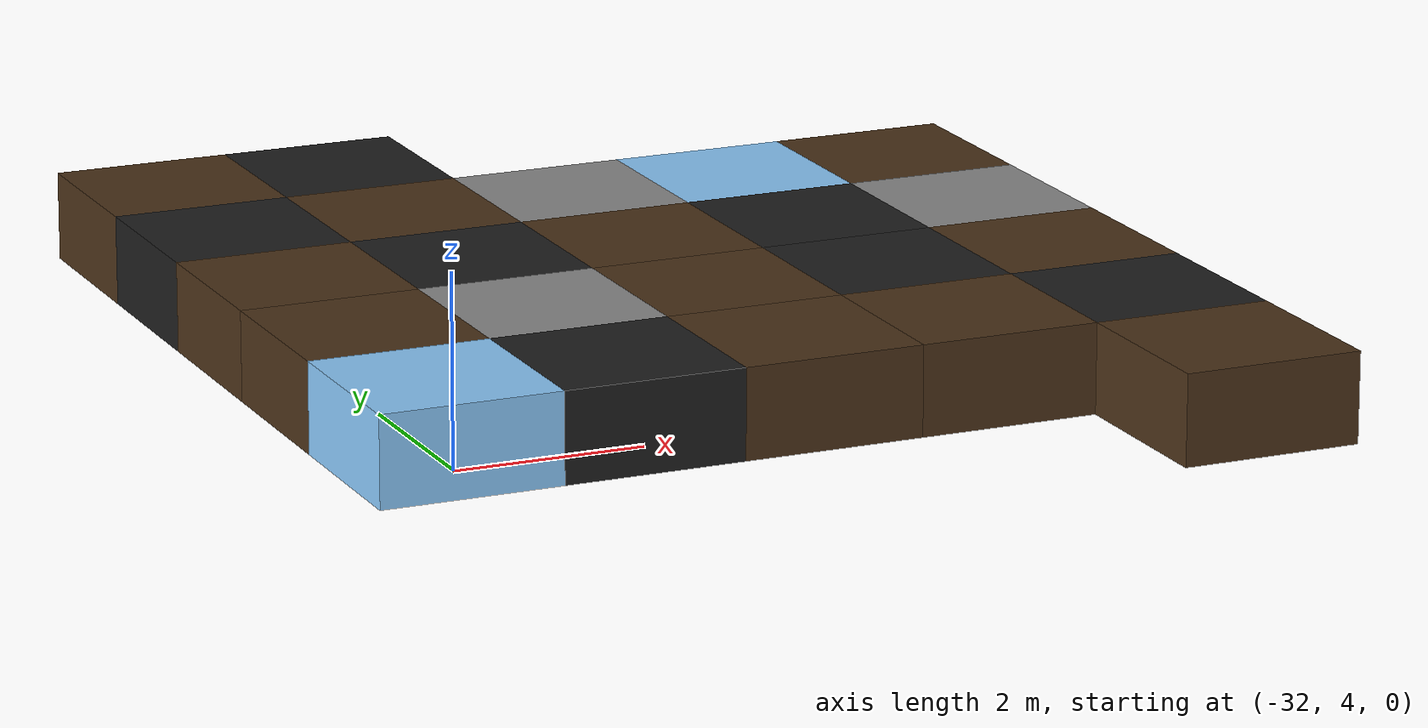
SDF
<sdf version="1.5">
 <world name="squares_example">
  <model name="tile_4_18">
   <static>true</static>
   <pose>-23.000 5.000 -0.500 0 0 0</pose>
   <link name="link">
    <collision name="col">
     <geometry><box><size>2.0 2.0 1.0</size></box></geometry>
     <surface>
      <friction>
       <ode><mu>0.6</mu><mu2>0.4</mu2><fdir1>1 0 0</fdir1><slip1>0.08</slip1><slip2>0.08</slip2></ode>
       <torsional>
        <coefficient>0.03</coefficient>
        <use_patch_radius>false</use_patch_radius>
        <surface_radius>0.12</surface_radius>
        <ode><slip>0.0</slip></ode>
       </torsional>
      </friction>
      <bounce><restitution_coefficient>0.0</restitution_coefficient><threshold>0.1</threshold></bounce>
      <contact>
       <ode><kp>1000000.0</kp><kd>10000.0</kd><max_vel>0.01</max_vel><min_depth>0.0</min_depth></ode>
      </contact>
     </surface>
    </collision>
    <visual name="visual">
     <geometry><box><size>2.0 2.0 1.0</size></box></geometry>
     <material>
      <diffuse>0.30 0.20 0.10 1</diffuse>
      <ambient>0 0 0 0</ambient>
      <specular>0 0 0 1</specular>
      <emissive>0 0 0 1</emissive>
     </material>
    </visual>
   </link>
  </model>
  <model name="tile_0_19">
   <static>true</static>
   <pose>-31.000 7.000 -0.500 0 0 0</pose>
   <link name="link">
    <collision name="col">
     <geometry><box><size>2.0 2.0 1.0</size></box></geometry>
     <surface>
      <friction>
       <ode><mu>0.03</mu><mu2>0.02</mu2><fdir1>1 0 0</fdir1><slip1>0.03</slip1><slip2>0.03</slip2></ode>
       <torsional>
        <coefficient>0.005</coefficient>
        <use_patch_radius>false</use_patch_radius>
        <surface_radius>0.12</surface_radius>
        <ode><slip>0.01</slip></ode>
       </torsional>
      </friction>
      <bounce><restitution_coefficient>0.0</restitution_coefficient><threshold>0.1</threshold></bounce>
      <contact>
       <ode><kp>10000000.0</kp><kd>1000.0</kd><max_vel>0.01</max_vel><min_depth>0.0</min_depth></ode>
      </contact>
     </surface>
    </collision>
    <visual name="visual">
     <geometry><box><size>2.0 2.0 1.0</size></box></geometry>
     <material>
      <diffuse>0.55 0.80 1.00 1</diffuse>
      <ambient>0 0 0 0</ambient>
      <specular>0 0 0 1</specular>
      <emissive>0 0 0 1</emissive>
     </material>
    </visual>
   </link>
  </model>
  <model name="tile_1_19">
   <static>true</static>
   <pose>-29.000 7.000 -0.500 0 0 0</pose>
   <link name="link">
    <collision name="col">
     <geometry><box><size>2.0 2.0 1.0</size></box></geometry>
     <surface>
      <friction>
       <ode><mu>0.4</mu><mu2>0.15</mu2><fdir1>1 0 0</fdir1><slip1>0.0</slip1><slip2>0.0</slip2></ode>
       <torsional>
        <coefficient>0.03</coefficient>
        <use_patch_radius>false</use_patch_radius>
        <surface_radius>0.12</surface_radius>
        <ode><slip>0.0</slip></ode>
       </torsional>
      </friction>
      <bounce><restitution_coefficient>0.0</restitution_coefficient><threshold>0.1</threshold></bounce>
      <contact>
       <ode><kp>1000000000.0</kp><kd>1000000.0</kd><max_vel>0.01</max_vel><min_depth>0.0</min_depth></ode>
      </contact>
     </surface>
    </collision>
    <visual name="visual">
     <geometry><box><size>2.0 2.0 1.0</size></box></geometry>
     <material>
      <diffuse>0.12 0.12 0.12 1</diffuse>
      <ambient>0 0 0 0</ambient>
      <specular>0 0 0 1</specular>
      <emissive>0 0 0 1</emissive>
     </material>
    </visual>
   </link>
  </model>
  <model name="tile_2_19">
   <static>true</static>
   <pose>-27.000 7.000 -0.500 0 0 0</pose>
   <link name="link">
    <collision name="col">
     <geometry><box><size>2.0 2.0 1.0</size></box></geometry>
     <surface>
      <friction>
       <ode><mu>0.6</mu><mu2>0.4</mu2><fdir1>1 0 0</fdir1><slip1>0.08</slip1><slip2>0.08</slip2></ode>
       <torsional>
        <coefficient>0.03</coefficient>
        <use_patch_radius>false</use_patch_radius>
        <surface_radius>0.12</surface_radius>
        <ode><slip>0.0</slip></ode>
       </torsional>
      </friction>
      <bounce><restitution_coefficient>0.0</restitution_coefficient><threshold>0.1</threshold></bounce>
      <contact>
       <ode><kp>1000000.0</kp><kd>10000.0</kd><max_vel>0.01</max_vel><min_depth>0.0</min_depth></ode>
      </contact>
     </surface>
    </collision>
    <visual name="visual">
     <geometry><box><size>2.0 2.0 1.0</size></box></geometry>
     <material>
      <diffuse>0.30 0.20 0.10 1</diffuse>
      <ambient>0 0 0 0</ambient>
      <specular>0 0 0 1</specular>
      <emissive>0 0 0 1</emissive>
     </material>
    </visual>
   </link>
  </model>
  <model name="tile_3_19">
   <static>true</static>
   <pose>-25.000 7.000 -0.500 0 0 0</pose>
   <link name="link">
    <collision name="col">
     <geometry><box><size>2.0 2.0 1.0</size></box></geometry>
     <surface>
      <friction>
       <ode><mu>0.6</mu><mu2>0.4</mu2><fdir1>1 0 0</fdir1><slip1>0.08</slip1><slip2>0.08</slip2></ode>
       <torsional>
        <coefficient>0.03</coefficient>
        <use_patch_radius>false</use_patch_radius>
        <surface_radius>0.12</surface_radius>
        <ode><slip>0.0</slip></ode>
       </torsional>
      </friction>
      <bounce><restitution_coefficient>0.0</restitution_coefficient><threshold>0.1</threshold></bounce>
      <contact>
       <ode><kp>1000000.0</kp><kd>10000.0</kd><max_vel>0.01</max_vel><min_depth>0.0</min_depth></ode>
      </contact>
     </surface>
    </collision>
    <visual name="visual">
     <geometry><box><size>2.0 2.0 1.0</size></box></geometry>
     <material>
      <diffuse>0.30 0.20 0.10 1</diffuse>
      <ambient>0 0 0 0</ambient>
      <specular>0 0 0 1</specular>
      <emissive>0 0 0 1</emissive>
     </material>
    </visual>
   </link>
  </model>
  <model name="tile_4_19">
   <static>true</static>
   <pose>-23.000 7.000 -0.500 0 0 0</pose>
   <link name="link">
    <collision name="col">
     <geometry><box><size>2.0 2.0 1.0</size></box></geometry>
     <surface>
      <friction>
       <ode><mu>0.4</mu><mu2>0.15</mu2><fdir1>1 0 0</fdir1><slip1>0.0</slip1><slip2>0.0</slip2></ode>
       <torsional>
        <coefficient>0.03</coefficient>
        <use_patch_radius>false</use_patch_radius>
        <surface_radius>0.12</surface_radius>
        <ode><slip>0.0</slip></ode>
       </torsional>
      </friction>
      <bounce><restitution_coefficient>0.0</restitution_coefficient><threshold>0.1</threshold></bounce>
      <contact>
       <ode><kp>1000000000.0</kp><kd>1000000.0</kd><max_vel>0.01</max_vel><min_depth>0.0</min_depth></ode>
      </contact>
     </surface>
    </collision>
    <visual name="visual">
     <geometry><box><size>2.0 2.0 1.0</size></box></geometry>
     <material>
      <diffuse>0.12 0.12 0.12 1</diffuse>
      <ambient>0 0 0 0</ambient>
      <specular>0 0 0 1</specular>
      <emissive>0 0 0 1</emissive>
     </material>
    </visual>
   </link>
  </model>
  <model name="tile_0_20">
   <static>true</static>
   <pose>-31.000 9.000 -0.500 0 0 0</pose>
   <link name="link">
    <collision name="col">
     <geometry><box><size>2.0 2.0 1.0</size></box></geometry>
     <surface>
      <friction>
       <ode><mu>0.6</mu><mu2>0.4</mu2><fdir1>1 0 0</fdir1><slip1>0.08</slip1><slip2>0.08</slip2></ode>
       <torsional>
        <coefficient>0.03</coefficient>
        <use_patch_radius>false</use_patch_radius>
        <surface_radius>0.12</surface_radius>
        <ode><slip>0.0</slip></ode>
       </torsional>
      </friction>
      <bounce><restitution_coefficient>0.0</restitution_coefficient><threshold>0.1</threshold></bounce>
      <contact>
       <ode><kp>1000000.0</kp><kd>10000.0</kd><max_vel>0.01</max_vel><min_depth>0.0</min_depth></ode>
      </contact>
     </surface>
    </collision>
    <visual name="visual">
     <geometry><box><size>2.0 2.0 1.0</size></box></geometry>
     <material>
      <diffuse>0.30 0.20 0.10 1</diffuse>
      <ambient>0 0 0 0</ambient>
      <specular>0 0 0 1</specular>
      <emissive>0 0 0 1</emissive>
     </material>
    </visual>
   </link>
  </model>
  <model name="tile_1_20">
   <static>true</static>
   <pose>-29.000 9.000 -0.500 0 0 0</pose>
   <link name="link">
    <collision name="col">
     <geometry><box><size>2.0 2.0 1.0</size></box></geometry>
     <surface>
      <friction>
       <ode><mu>0.8</mu><mu2>0.3</mu2><fdir1>1 0 0</fdir1><slip1>0.0</slip1><slip2>0.0</slip2></ode>
       <torsional>
        <coefficient>0.03</coefficient>
        <use_patch_radius>false</use_patch_radius>
        <surface_radius>0.12</surface_radius>
        <ode><slip>0.0</slip></ode>
       </torsional>
      </friction>
      <bounce><restitution_coefficient>0.0</restitution_coefficient><threshold>0.1</threshold></bounce>
      <contact>
       <ode><kp>10000000000.0</kp><kd>10000000.0</kd><max_vel>0.01</max_vel><min_depth>0.0</min_depth></ode>
      </contact>
     </surface>
    </collision>
    <visual name="visual">
     <geometry><box><size>2.0 2.0 1.0</size></box></geometry>
     <material>
      <diffuse>0.55 0.55 0.55 1</diffuse>
      <ambient>0 0 0 0</ambient>
      <specular>0 0 0 1</specular>
      <emissive>0 0 0 1</emissive>
     </material>
    </visual>
   </link>
  </model>
  <model name="tile_2_20">
   <static>true</static>
   <pose>-27.000 9.000 -0.500 0 0 0</pose>
   <link name="link">
    <collision name="col">
     <geometry><box><size>2.0 2.0 1.0</size></box></geometry>
     <surface>
      <friction>
       <ode><mu>0.6</mu><mu2>0.4</mu2><fdir1>1 0 0</fdir1><slip1>0.08</slip1><slip2>0.08</slip2></ode>
       <torsional>
        <coefficient>0.03</coefficient>
        <use_patch_radius>false</use_patch_radius>
        <surface_radius>0.12</surface_radius>
        <ode><slip>0.0</slip></ode>
       </torsional>
      </friction>
      <bounce><restitution_coefficient>0.0</restitution_coefficient><threshold>0.1</threshold></bounce>
      <contact>
       <ode><kp>1000000.0</kp><kd>10000.0</kd><max_vel>0.01</max_vel><min_depth>0.0</min_depth></ode>
      </contact>
     </surface>
    </collision>
    <visual name="visual">
     <geometry><box><size>2.0 2.0 1.0</size></box></geometry>
     <material>
      <diffuse>0.30 0.20 0.10 1</diffuse>
      <ambient>0 0 0 0</ambient>
      <specular>0 0 0 1</specular>
      <emissive>0 0 0 1</emissive>
     </material>
    </visual>
   </link>
  </model>
  <model name="tile_3_20">
   <static>true</static>
   <pose>-25.000 9.000 -0.500 0 0 0</pose>
   <link name="link">
    <collision name="col">
     <geometry><box><size>2.0 2.0 1.0</size></box></geometry>
     <surface>
      <friction>
       <ode><mu>0.4</mu><mu2>0.15</mu2><fdir1>1 0 0</fdir1><slip1>0.0</slip1><slip2>0.0</slip2></ode>
       <torsional>
        <coefficient>0.03</coefficient>
        <use_patch_radius>false</use_patch_radius>
        <surface_radius>0.12</surface_radius>
        <ode><slip>0.0</slip></ode>
       </torsional>
      </friction>
      <bounce><restitution_coefficient>0.0</restitution_coefficient><threshold>0.1</threshold></bounce>
      <contact>
       <ode><kp>1000000000.0</kp><kd>1000000.0</kd><max_vel>0.01</max_vel><min_depth>0.0</min_depth></ode>
      </contact>
     </surface>
    </collision>
    <visual name="visual">
     <geometry><box><size>2.0 2.0 1.0</size></box></geometry>
     <material>
      <diffuse>0.12 0.12 0.12 1</diffuse>
      <ambient>0 0 0 0</ambient>
      <specular>0 0 0 1</specular>
      <emissive>0 0 0 1</emissive>
     </material>
    </visual>
   </link>
  </model>
  <model name="tile_4_20">
   <static>true</static>
   <pose>-23.000 9.000 -0.500 0 0 0</pose>
   <link name="link">
    <collision name="col">
     <geometry><box><size>2.0 2.0 1.0</size></box></geometry>
     <surface>
      <friction>
       <ode><mu>0.6</mu><mu2>0.4</mu2><fdir1>1 0 0</fdir1><slip1>0.08</slip1><slip2>0.08</slip2></ode>
       <torsional>
        <coefficient>0.03</coefficient>
        <use_patch_radius>false</use_patch_radius>
        <surface_radius>0.12</surface_radius>
        <ode><slip>0.0</slip></ode>
       </torsional>
      </friction>
      <bounce><restitution_coefficient>0.0</restitution_coefficient><threshold>0.1</threshold></bounce>
      <contact>
       <ode><kp>1000000.0</kp><kd>10000.0</kd><max_vel>0.01</max_vel><min_depth>0.0</min_depth></ode>
      </contact>
     </surface>
    </collision>
    <visual name="visual">
     <geometry><box><size>2.0 2.0 1.0</size></box></geometry>
     <material>
      <diffuse>0.30 0.20 0.10 1</diffuse>
      <ambient>0 0 0 0</ambient>
      <specular>0 0 0 1</specular>
      <emissive>0 0 0 1</emissive>
     </material>
    </visual>
   </link>
  </model>
  <model name="tile_0_21">
   <static>true</static>
   <pose>-31.000 11.000 -0.500 0 0 0</pose>
   <link name="link">
    <collision name="col">
     <geometry><box><size>2.0 2.0 1.0</size></box></geometry>
     <surface>
      <friction>
       <ode><mu>0.6</mu><mu2>0.4</mu2><fdir1>1 0 0</fdir1><slip1>0.08</slip1><slip2>0.08</slip2></ode>
       <torsional>
        <coefficient>0.03</coefficient>
        <use_patch_radius>false</use_patch_radius>
        <surface_radius>0.12</surface_radius>
        <ode><slip>0.0</slip></ode>
       </torsional>
      </friction>
      <bounce><restitution_coefficient>0.0</restitution_coefficient><threshold>0.1</threshold></bounce>
      <contact>
       <ode><kp>1000000.0</kp><kd>10000.0</kd><max_vel>0.01</max_vel><min_depth>0.0</min_depth></ode>
      </contact>
     </surface>
    </collision>
    <visual name="visual">
     <geometry><box><size>2.0 2.0 1.0</size></box></geometry>
     <material>
      <diffuse>0.30 0.20 0.10 1</diffuse>
      <ambient>0 0 0 0</ambient>
      <specular>0 0 0 1</specular>
      <emissive>0 0 0 1</emissive>
     </material>
    </visual>
   </link>
  </model>
  <model name="tile_1_21">
   <static>true</static>
   <pose>-29.000 11.000 -0.500 0 0 0</pose>
   <link name="link">
    <collision name="col">
     <geometry><box><size>2.0 2.0 1.0</size></box></geometry>
     <surface>
      <friction>
       <ode><mu>0.4</mu><mu2>0.15</mu2><fdir1>1 0 0</fdir1><slip1>0.0</slip1><slip2>0.0</slip2></ode>
       <torsional>
        <coefficient>0.03</coefficient>
        <use_patch_radius>false</use_patch_radius>
        <surface_radius>0.12</surface_radius>
        <ode><slip>0.0</slip></ode>
       </torsional>
      </friction>
      <bounce><restitution_coefficient>0.0</restitution_coefficient><threshold>0.1</threshold></bounce>
      <contact>
       <ode><kp>1000000000.0</kp><kd>1000000.0</kd><max_vel>0.01</max_vel><min_depth>0.0</min_depth></ode>
      </contact>
     </surface>
    </collision>
    <visual name="visual">
     <geometry><box><size>2.0 2.0 1.0</size></box></geometry>
     <material>
      <diffuse>0.12 0.12 0.12 1</diffuse>
      <ambient>0 0 0 0</ambient>
      <specular>0 0 0 1</specular>
      <emissive>0 0 0 1</emissive>
     </material>
    </visual>
   </link>
  </model>
  <model name="tile_2_21">
   <static>true</static>
   <pose>-27.000 11.000 -0.500 0 0 0</pose>
   <link name="link">
    <collision name="col">
     <geometry><box><size>2.0 2.0 1.0</size></box></geometry>
     <surface>
      <friction>
       <ode><mu>0.6</mu><mu2>0.4</mu2><fdir1>1 0 0</fdir1><slip1>0.08</slip1><slip2>0.08</slip2></ode>
       <torsional>
        <coefficient>0.03</coefficient>
        <use_patch_radius>false</use_patch_radius>
        <surface_radius>0.12</surface_radius>
        <ode><slip>0.0</slip></ode>
       </torsional>
      </friction>
      <bounce><restitution_coefficient>0.0</restitution_coefficient><threshold>0.1</threshold></bounce>
      <contact>
       <ode><kp>1000000.0</kp><kd>10000.0</kd><max_vel>0.01</max_vel><min_depth>0.0</min_depth></ode>
      </contact>
     </surface>
    </collision>
    <visual name="visual">
     <geometry><box><size>2.0 2.0 1.0</size></box></geometry>
     <material>
      <diffuse>0.30 0.20 0.10 1</diffuse>
      <ambient>0 0 0 0</ambient>
      <specular>0 0 0 1</specular>
      <emissive>0 0 0 1</emissive>
     </material>
    </visual>
   </link>
  </model>
  <model name="tile_3_21">
   <static>true</static>
   <pose>-25.000 11.000 -0.500 0 0 0</pose>
   <link name="link">
    <collision name="col">
     <geometry><box><size>2.0 2.0 1.0</size></box></geometry>
     <surface>
      <friction>
       <ode><mu>0.4</mu><mu2>0.15</mu2><fdir1>1 0 0</fdir1><slip1>0.0</slip1><slip2>0.0</slip2></ode>
       <torsional>
        <coefficient>0.03</coefficient>
        <use_patch_radius>false</use_patch_radius>
        <surface_radius>0.12</surface_radius>
        <ode><slip>0.0</slip></ode>
       </torsional>
      </friction>
      <bounce><restitution_coefficient>0.0</restitution_coefficient><threshold>0.1</threshold></bounce>
      <contact>
       <ode><kp>1000000000.0</kp><kd>1000000.0</kd><max_vel>0.01</max_vel><min_depth>0.0</min_depth></ode>
      </contact>
     </surface>
    </collision>
    <visual name="visual">
     <geometry><box><size>2.0 2.0 1.0</size></box></geometry>
     <material>
      <diffuse>0.12 0.12 0.12 1</diffuse>
      <ambient>0 0 0 0</ambient>
      <specular>0 0 0 1</specular>
      <emissive>0 0 0 1</emissive>
     </material>
    </visual>
   </link>
  </model>
  <model name="tile_4_21">
   <static>true</static>
   <pose>-23.000 11.000 -0.500 0 0 0</pose>
   <link name="link">
    <collision name="col">
     <geometry><box><size>2.0 2.0 1.0</size></box></geometry>
     <surface>
      <friction>
       <ode><mu>0.8</mu><mu2>0.3</mu2><fdir1>1 0 0</fdir1><slip1>0.0</slip1><slip2>0.0</slip2></ode>
       <torsional>
        <coefficient>0.03</coefficient>
        <use_patch_radius>false</use_patch_radius>
        <surface_radius>0.12</surface_radius>
        <ode><slip>0.0</slip></ode>
       </torsional>
      </friction>
      <bounce><restitution_coefficient>0.0</restitution_coefficient><threshold>0.1</threshold></bounce>
      <contact>
       <ode><kp>10000000000.0</kp><kd>10000000.0</kd><max_vel>0.01</max_vel><min_depth>0.0</min_depth></ode>
      </contact>
     </surface>
    </collision>
    <visual name="visual">
     <geometry><box><size>2.0 2.0 1.0</size></box></geometry>
     <material>
      <diffuse>0.55 0.55 0.55 1</diffuse>
      <ambient>0 0 0 0</ambient>
      <specular>0 0 0 1</specular>
      <emissive>0 0 0 1</emissive>
     </material>
    </visual>
   </link>
  </model>
  <model name="tile_0_22">
   <static>true</static>
   <pose>-31.000 13.000 -0.500 0 0 0</pose>
   <link name="link">
    <collision name="col">
     <geometry><box><size>2.0 2.0 1.0</size></box></geometry>
     <surface>
      <friction>
       <ode><mu>0.4</mu><mu2>0.15</mu2><fdir1>1 0 0</fdir1><slip1>0.0</slip1><slip2>0.0</slip2></ode>
       <torsional>
        <coefficient>0.03</coefficient>
        <use_patch_radius>false</use_patch_radius>
        <surface_radius>0.12</surface_radius>
        <ode><slip>0.0</slip></ode>
       </torsional>
      </friction>
      <bounce><restitution_coefficient>0.0</restitution_coefficient><threshold>0.1</threshold></bounce>
      <contact>
       <ode><kp>1000000000.0</kp><kd>1000000.0</kd><max_vel>0.01</max_vel><min_depth>0.0</min_depth></ode>
      </contact>
     </surface>
    </collision>
    <visual name="visual">
     <geometry><box><size>2.0 2.0 1.0</size></box></geometry>
     <material>
      <diffuse>0.12 0.12 0.12 1</diffuse>
      <ambient>0 0 0 0</ambient>
      <specular>0 0 0 1</specular>
      <emissive>0 0 0 1</emissive>
     </material>
    </visual>
   </link>
  </model>
  <model name="tile_1_22">
   <static>true</static>
   <pose>-29.000 13.000 -0.500 0 0 0</pose>
   <link name="link">
    <collision name="col">
     <geometry><box><size>2.0 2.0 1.0</size></box></geometry>
     <surface>
      <friction>
       <ode><mu>0.6</mu><mu2>0.4</mu2><fdir1>1 0 0</fdir1><slip1>0.08</slip1><slip2>0.08</slip2></ode>
       <torsional>
        <coefficient>0.03</coefficient>
        <use_patch_radius>false</use_patch_radius>
        <surface_radius>0.12</surface_radius>
        <ode><slip>0.0</slip></ode>
       </torsional>
      </friction>
      <bounce><restitution_coefficient>0.0</restitution_coefficient><threshold>0.1</threshold></bounce>
      <contact>
       <ode><kp>1000000.0</kp><kd>10000.0</kd><max_vel>0.01</max_vel><min_depth>0.0</min_depth></ode>
      </contact>
     </surface>
    </collision>
    <visual name="visual">
     <geometry><box><size>2.0 2.0 1.0</size></box></geometry>
     <material>
      <diffuse>0.30 0.20 0.10 1</diffuse>
      <ambient>0 0 0 0</ambient>
      <specular>0 0 0 1</specular>
      <emissive>0 0 0 1</emissive>
     </material>
    </visual>
   </link>
  </model>
  <model name="tile_2_22">
   <static>true</static>
   <pose>-27.000 13.000 -0.500 0 0 0</pose>
   <link name="link">
    <collision name="col">
     <geometry><box><size>2.0 2.0 1.0</size></box></geometry>
     <surface>
      <friction>
       <ode><mu>0.8</mu><mu2>0.3</mu2><fdir1>1 0 0</fdir1><slip1>0.0</slip1><slip2>0.0</slip2></ode>
       <torsional>
        <coefficient>0.03</coefficient>
        <use_patch_radius>false</use_patch_radius>
        <surface_radius>0.12</surface_radius>
        <ode><slip>0.0</slip></ode>
       </torsional>
      </friction>
      <bounce><restitution_coefficient>0.0</restitution_coefficient><threshold>0.1</threshold></bounce>
      <contact>
       <ode><kp>10000000000.0</kp><kd>10000000.0</kd><max_vel>0.01</max_vel><min_depth>0.0</min_depth></ode>
      </contact>
     </surface>
    </collision>
    <visual name="visual">
     <geometry><box><size>2.0 2.0 1.0</size></box></geometry>
     <material>
      <diffuse>0.55 0.55 0.55 1</diffuse>
      <ambient>0 0 0 0</ambient>
      <specular>0 0 0 1</specular>
      <emissive>0 0 0 1</emissive>
     </material>
    </visual>
   </link>
  </model>
  <model name="tile_3_22">
   <static>true</static>
   <pose>-25.000 13.000 -0.500 0 0 0</pose>
   <link name="link">
    <collision name="col">
     <geometry><box><size>2.0 2.0 1.0</size></box></geometry>
     <surface>
      <friction>
       <ode><mu>0.03</mu><mu2>0.02</mu2><fdir1>1 0 0</fdir1><slip1>0.03</slip1><slip2>0.03</slip2></ode>
       <torsional>
        <coefficient>0.005</coefficient>
        <use_patch_radius>false</use_patch_radius>
        <surface_radius>0.12</surface_radius>
        <ode><slip>0.01</slip></ode>
       </torsional>
      </friction>
      <bounce><restitution_coefficient>0.0</restitution_coefficient><threshold>0.1</threshold></bounce>
      <contact>
       <ode><kp>10000000.0</kp><kd>1000.0</kd><max_vel>0.01</max_vel><min_depth>0.0</min_depth></ode>
      </contact>
     </surface>
    </collision>
    <visual name="visual">
     <geometry><box><size>2.0 2.0 1.0</size></box></geometry>
     <material>
      <diffuse>0.55 0.80 1.00 1</diffuse>
      <ambient>0 0 0 0</ambient>
      <specular>0 0 0 1</specular>
      <emissive>0 0 0 1</emissive>
     </material>
    </visual>
   </link>
  </model>
  <model name="tile_4_22">
   <static>true</static>
   <pose>-23.000 13.000 -0.500 0 0 0</pose>
   <link name="link">
    <collision name="col">
     <geometry><box><size>2.0 2.0 1.0</size></box></geometry>
     <surface>
      <friction>
       <ode><mu>0.6</mu><mu2>0.4</mu2><fdir1>1 0 0</fdir1><slip1>0.08</slip1><slip2>0.08</slip2></ode>
       <torsional>
        <coefficient>0.03</coefficient>
        <use_patch_radius>false</use_patch_radius>
        <surface_radius>0.12</surface_radius>
        <ode><slip>0.0</slip></ode>
       </torsional>
      </friction>
      <bounce><restitution_coefficient>0.0</restitution_coefficient><threshold>0.1</threshold></bounce>
      <contact>
       <ode><kp>1000000.0</kp><kd>10000.0</kd><max_vel>0.01</max_vel><min_depth>0.0</min_depth></ode>
      </contact>
     </surface>
    </collision>
    <visual name="visual">
     <geometry><box><size>2.0 2.0 1.0</size></box></geometry>
     <material>
      <diffuse>0.30 0.20 0.10 1</diffuse>
      <ambient>0 0 0 0</ambient>
      <specular>0 0 0 1</specular>
      <emissive>0 0 0 1</emissive>
     </material>
    </visual>
   </link>
  </model>
  <model name="tile_0_23">
   <static>true</static>
   <pose>-31.000 15.000 -0.500 0 0 0</pose>
   <link name="link">
    <collision name="col">
     <geometry><box><size>2.0 2.0 1.0</size></box></geometry>
     <surface>
      <friction>
       <ode><mu>0.6</mu><mu2>0.4</mu2><fdir1>1 0 0</fdir1><slip1>0.08</slip1><slip2>0.08</slip2></ode>
       <torsional>
        <coefficient>0.03</coefficient>
        <use_patch_radius>false</use_patch_radius>
        <surface_radius>0.12</surface_radius>
        <ode><slip>0.0</slip></ode>
       </torsional>
      </friction>
      <bounce><restitution_coefficient>0.0</restitution_coefficient><threshold>0.1</threshold></bounce>
      <contact>
       <ode><kp>1000000.0</kp><kd>10000.0</kd><max_vel>0.01</max_vel><min_depth>0.0</min_depth></ode>
      </contact>
     </surface>
    </collision>
    <visual name="visual">
     <geometry><box><size>2.0 2.0 1.0</size></box></geometry>
     <material>
      <diffuse>0.30 0.20 0.10 1</diffuse>
      <ambient>0 0 0 0</ambient>
      <specular>0 0 0 1</specular>
      <emissive>0 0 0 1</emissive>
     </material>
    </visual>
   </link>
  </model>
  <model name="tile_1_23">
   <static>true</static>
   <pose>-29.000 15.000 -0.500 0 0 0</pose>
   <link name="link">
    <collision name="col">
     <geometry><box><size>2.0 2.0 1.0</size></box></geometry>
     <surface>
      <friction>
       <ode><mu>0.4</mu><mu2>0.15</mu2><fdir1>1 0 0</fdir1><slip1>0.0</slip1><slip2>0.0</slip2></ode>
       <torsional>
        <coefficient>0.03</coefficient>
        <use_patch_radius>false</use_patch_radius>
        <surface_radius>0.12</surface_radius>
        <ode><slip>0.0</slip></ode>
       </torsional>
      </friction>
      <bounce><restitution_coefficient>0.0</restitution_coefficient><threshold>0.1</threshold></bounce>
      <contact>
       <ode><kp>1000000000.0</kp><kd>1000000.0</kd><max_vel>0.01</max_vel><min_depth>0.0</min_depth></ode>
      </contact>
     </surface>
    </collision>
    <visual name="visual">
     <geometry><box><size>2.0 2.0 1.0</size></box></geometry>
     <material>
      <diffuse>0.12 0.12 0.12 1</diffuse>
      <ambient>0 0 0 0</ambient>
      <specular>0 0 0 1</specular>
      <emissive>0 0 0 1</emissive>
     </material>
    </visual>
   </link>
  </model>
 </world>
</sdf>
